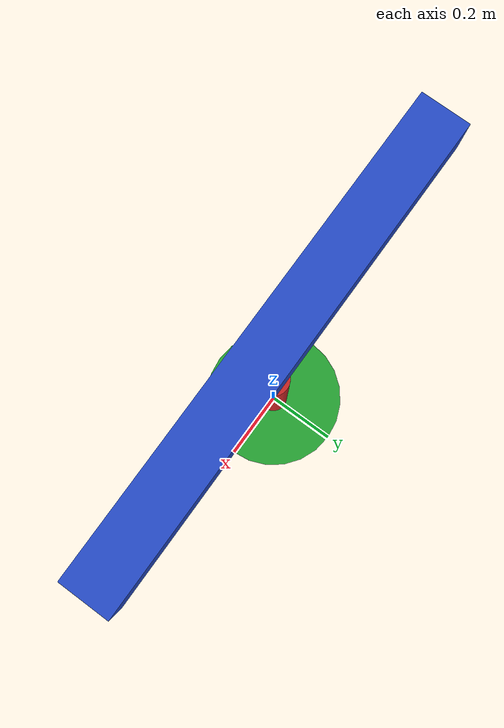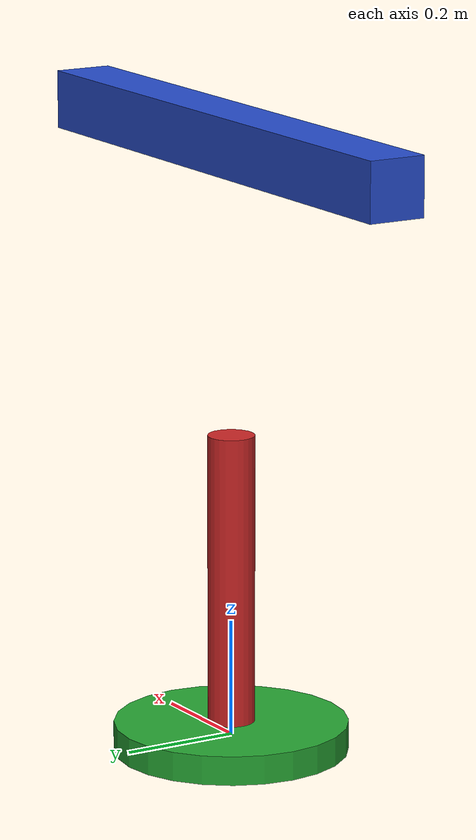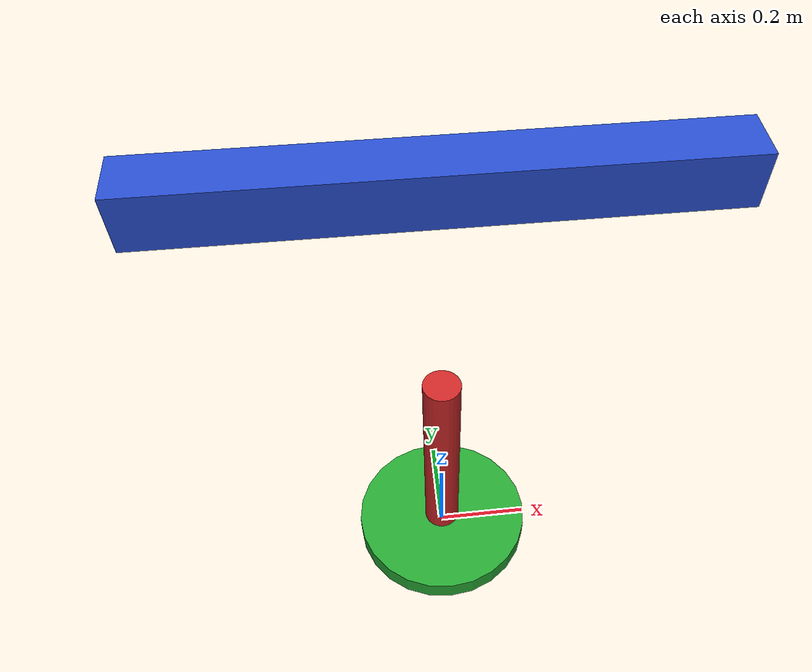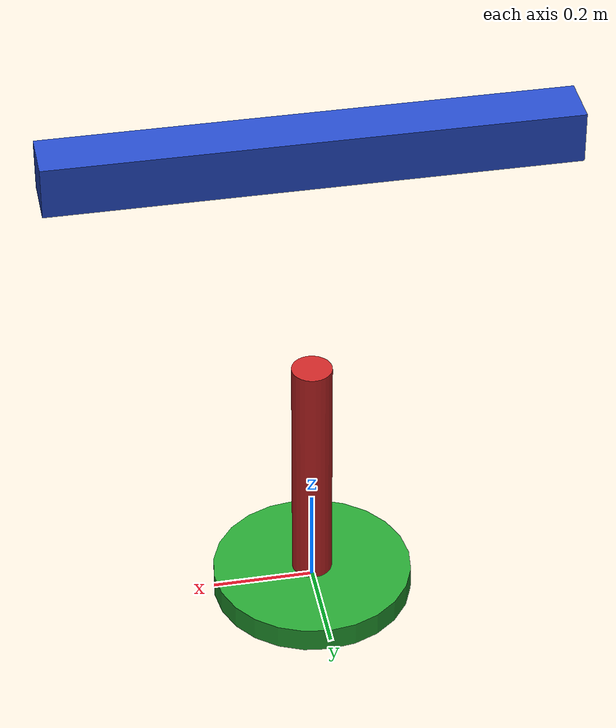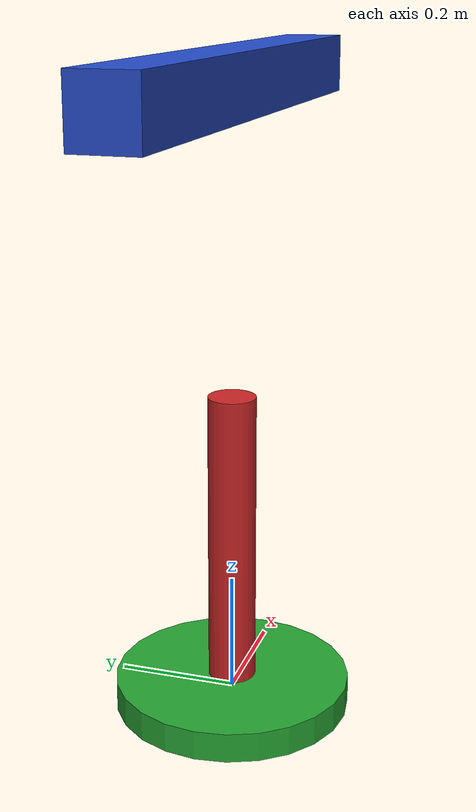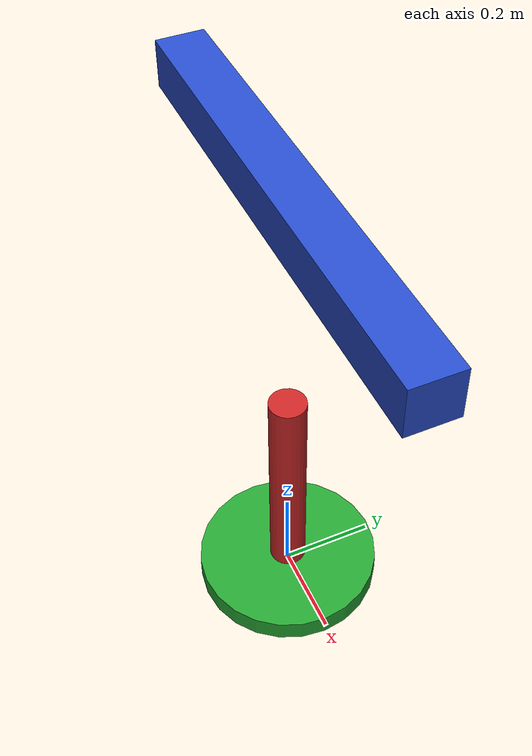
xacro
+<?xml version="1.0"?>
<robot xmlns:xacro="http://wiki.ros.org/wiki/xacro" name="simple_robot">

<!--here we define the model parameters  -->

<!-- Geometry -->

<xacro:property name="base_link_length" value="0.05"/>
<xacro:property name="base_link_radius" value="0.2"/>

<xacro:property name="first_link_length" value="0.5"/>
<xacro:property name="first_link_radius" value="0.04"/>

<xacro:property name="second_link_length" value="1.0"/>
<xacro:property name="second_link_height" value="0.1"/>
<xacro:property name="second_link_width" value="0.1"/>

<!-- joint limits -->

<xacro:property name="limits_revolute_upper" value="3.14"/>
<xacro:property name="limits_revolute_lower" value="-3.14"/>
<xacro:property name="limits_revolute_velocity" value="3.14"/>
<xacro:property name="limits_revolute_effort" value="300"/>

<xacro:property name="limits_prismatic_upper" value="0.5"/>
<xacro:property name="limits_prismatic_lower" value="-0.5"/>
<xacro:property name="limits_prismatic_velocity" value="0.8"/>
<xacro:property name="limits_prismatic_effort" value="300"/>

<xacro:include filename="$(find robot_model_pkg)/urdf/robot.gazebo"/>

        <link name="base_link">
                <visual>
                        <geometry>
                                <cylinder length="${base_link_length}"
                                radius="${base_link_radius}"/>
                        </geometry>

                        <!--origin - the reference frame of the visual element with respect to
the reference frame of the link -->
                        <!-- rpy -r is roll, p-pitch and y -yaw -->
                        <!-- xyz -x,y,z -offsets -->
                        <origin rpy="0 0 0" xyz="0 0 0"/>

                </visual>

                <collision>
                        <geometry>
                                <cylinder length="${base_link_length}"
                                radius="${base_link_radius}"/>
                        </geometry>
                        <origin rpy="0 0 0" xyz="0 0 0"/>
                </collision>

                <inertial>
                        <origin rpy="0 0 0" xyz="0 0 0"/>
                        <mass value="1"/>
                        <intertia ixx="100" ixy="0" ixz="0" iyy="100" iyz="0" izz="100" />
                </inertial>

          </link>

                <joint name="joint_1" type="revolute">
                <parent link="base_link"/>
                <child link="first_link"/>
                        <origin xyz="0 0 ${base_link_length/2}"/>
                        <axis xyz="0 0 1"/>
                        <limit effort="${limits_revolute_effort}"
                         velocity="${limits_revolute_velocity}"
                         lower="${limits_revolute_lower}"
                         upper="${limits_revolute_upper}" />

          </joint>

          <link name="first_link">
          <visual>
                 <geometry>
                                <cylinder length="${first_link_length}"
                                radius="${first_link_radius}"/>
                        </geometry>

                        <origin rpy="0 0 0" xyz="0 0 ${first_link_length/2}" />

                </visual>

                <collision>
                        <geometry>
                        <cylinder length="${first_link_length}"
                         radius="${first_link_radius}"/>
                        </geometry>
                        <origin rpy="0 0 0" xyz="0 0 ${first_link_length/2}"/>
                </collision>

                <inertial>
                        <origin rpy="0 0 0" xyz="0 0 ${first_link_length/2}"/>
                        <mass value="1"/>
                        <intertia ixx="100" ixy="0" ixz="0" iyy="100" iyz="0" izz="100" />
                </inertial>

          </link>
                <joint name="joint_2" type="prismatic">
                <parent link="first_link"/>
                <child link="second_link"/>
                        <origin xyz="0 0 ${first_link_length}"/>
                        <axis xyz="0 0 1"/>
                        <limit effort="${limits_prismatic_effort}"
                         velocity="${limits_prismatic_velocity}"
                         lower="${limits_prismatic_lower}"
                         upper="${limits_prismatic_upper}" />
          </joint>

          <link name="second_link">
          <visual>
                 <geometry>
                                <box size="${second_link_length}
                                ${second_link_width}
                                ${second_link_height}" />
                        </geometry>

                        <origin rpy="0 0 0" xyz="0 0 ${second_link_length/2}" />

                </visual>

                <collision>
                        <geometry>
                             <box size="${second_link_length} ${second_link_length} ${second_link_height}" />

                        </geometry>
                        <origin rpy="0 0 0" xyz="0 0 ${second_link_length/2}"/>
                </collision>

                <inertial>
                        <origin rpy="0 0 0" xyz="0 0 ${second_link_height/2}"/>
                        <mass value="1"/>
                        <intertia ixx="100" ixy="0" ixz="0" iyy="100" iyz="0" izz="100" />
                </inertial>

          </link>

</robot>
